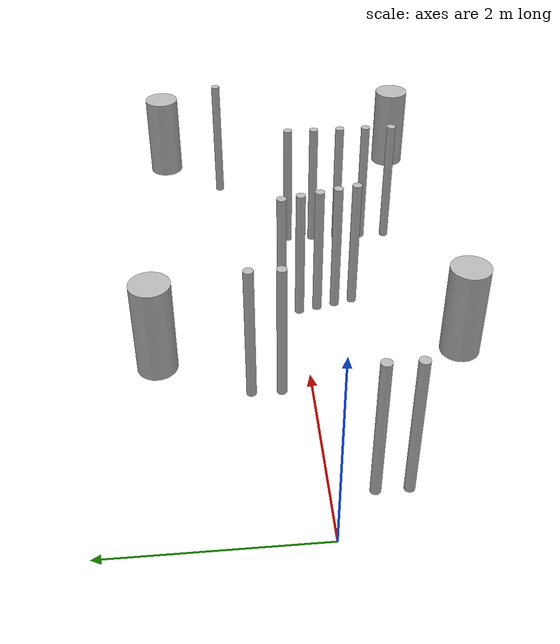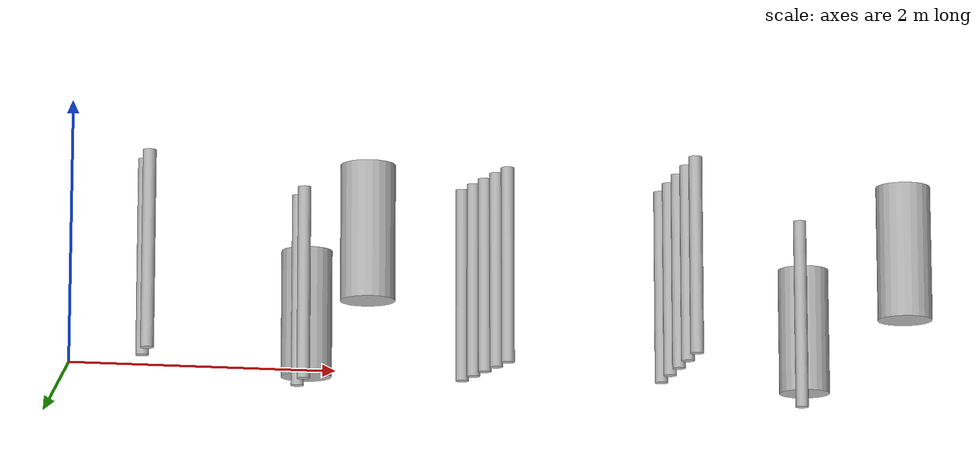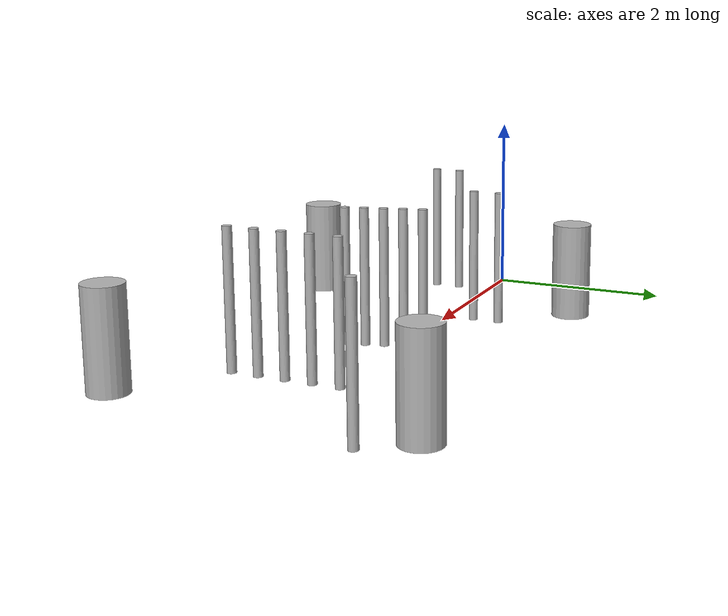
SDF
<?xml version="1.0"?>
<sdf version="1.4">
  <model name="obstacle_course">
    <pose>0 0 0 0 0 0</pose>
    <static>true</static>

    <link name="cyl_left_near_corner">
      <pose>2 -1.5 0.736 0.0 -0.0 0.0</pose>
      <collision name="collision">
        <geometry>
          <cylinder>
            <radius>0.2</radius>
            <length>1.0</length>
          </cylinder>
        </geometry>
      </collision>
      <visual name="visual">
        <geometry>
          <cylinder>
            <radius>0.2</radius>
            <length>1.0</length>
          </cylinder>
        </geometry>
        <material/>
      </visual>
    </link>
    <link name="cyl_right_near_corner">
      <pose>2 1.5 0.736 0.0 -0.0 0.0</pose>
      <collision name="collision">
        <geometry>
          <cylinder>
            <radius>0.2</radius>
            <length>1.0</length>
          </cylinder>
        </geometry>
      </collision>
      <visual name="visual">
        <geometry>
          <cylinder>
            <radius>0.2</radius>
            <length>1.0</length>
          </cylinder>
        </geometry>
        <material/>
      </visual>
    </link>
    <link name="cyl_left_far_corner">
      <pose>6 -1.5 0.736 0.0 -0.0 0.0</pose>
      <collision name="collision">
        <geometry>
          <cylinder>
            <radius>0.2</radius>
            <length>1.0</length>
          </cylinder>
        </geometry>
      </collision>
      <visual name="visual">
        <geometry>
          <cylinder>
            <radius>0.2</radius>
            <length>1.0</length>
          </cylinder>
        </geometry>
        <material/>
      </visual>
    </link>
    <link name="cyl_far_near_corner">
      <pose>6 1.5 0.736 0.0 -0.0 0.0</pose>
      <collision name="collision">
        <geometry>
          <cylinder>
            <radius>0.2</radius>
            <length>1.0</length>
          </cylinder>
        </geometry>
      </collision>
      <visual name="visual">
        <geometry>
          <cylinder>
            <radius>0.2</radius>
            <length>1.0</length>
          </cylinder>
        </geometry>
        <material/>
      </visual>
    </link>

    <link name="cyl_1_01">
      <pose>0.5 -0.7 0.736 0.0 -0.0 0.0</pose>
      <collision name="collision">
        <geometry>
          <cylinder>
            <radius>0.0500</radius>
            <length>1.4800</length>
          </cylinder>
        </geometry>
      </collision>
      <visual name="visual">
        <geometry>
          <cylinder>
            <radius>0.0500</radius>
            <length>1.4800</length>
          </cylinder>
        </geometry>
        <material/>
      </visual>
    </link>
    <link name="cyl_1_02">
      <pose>0.5 -0.4 0.736 0.0 -0.0 0.0</pose>
      <collision name="collision">
        <geometry>
          <cylinder>
            <radius>0.0500</radius>
            <length>1.4800</length>
          </cylinder>
        </geometry>
      </collision>
      <visual name="visual">
        <geometry>
          <cylinder>
            <radius>0.0500</radius>
            <length>1.4800</length>
          </cylinder>
        </geometry>
        <material/>
      </visual>
    </link>
    <link name="cyl_2_01">
      <pose>1.8 0.6 0.736 0.0 -0.0 0.0</pose>
      <collision name="collision">
        <geometry>
          <cylinder>
            <radius>0.0500</radius>
            <length>1.4800</length>
          </cylinder>
        </geometry>
      </collision>
      <visual name="visual">
        <geometry>
          <cylinder>
            <radius>0.0500</radius>
            <length>1.4800</length>
          </cylinder>
        </geometry>
        <material/>
      </visual>
    </link>
    <link name="cyl_2_02">
      <pose>1.8 0.3 0.736 0.0 -0.0 0.0</pose>
      <collision name="collision">
        <geometry>
          <cylinder>
            <radius>0.0500</radius>
            <length>1.4800</length>
          </cylinder>
        </geometry>
      </collision>
      <visual name="visual">
        <geometry>
          <cylinder>
            <radius>0.0500</radius>
            <length>1.4800</length>
          </cylinder>
        </geometry>
        <material/>
      </visual>
    </link>
    <link name="cyl_3_01">
      <pose>3.2 -0.6 0.736 0.0 -0.0 0.0</pose>
      <collision name="collision">
        <geometry>
          <cylinder>
            <radius>0.0500</radius>
            <length>1.4800</length>
          </cylinder>
        </geometry>
      </collision>
      <visual name="visual">
        <geometry>
          <cylinder>
            <radius>0.0500</radius>
            <length>1.4800</length>
          </cylinder>
        </geometry>
        <material/>
      </visual>
    </link>
    <link name="cyl_3_02">
      <pose>3.15 -0.4 0.736 0.0 -0.0 0.0</pose>
      <collision name="collision">
        <geometry>
          <cylinder>
            <radius>0.0500</radius>
            <length>1.4800</length>
          </cylinder>
        </geometry>
      </collision>
      <visual name="visual">
        <geometry>
          <cylinder>
            <radius>0.0500</radius>
            <length>1.4800</length>
          </cylinder>
        </geometry>
        <material/>
      </visual>
    </link>
    <link name="cyl_3_03">
      <pose>3.1 -0.2 0.736 0.0 -0.0 0.0</pose>
      <collision name="collision">
        <geometry>
          <cylinder>
            <radius>0.0500</radius>
            <length>1.4800</length>
          </cylinder>
        </geometry>
      </collision>
      <visual name="visual">
        <geometry>
          <cylinder>
            <radius>0.0500</radius>
            <length>1.4800</length>
          </cylinder>
        </geometry>
        <material/>
      </visual>
    </link>
    <link name="cyl_3_04">
      <pose>3.05 0 0.736 0.0 -0.0 0.0</pose>
      <collision name="collision">
        <geometry>
          <cylinder>
            <radius>0.0500</radius>
            <length>1.4800</length>
          </cylinder>
        </geometry>
      </collision>
      <visual name="visual">
        <geometry>
          <cylinder>
            <radius>0.0500</radius>
            <length>1.4800</length>
          </cylinder>
        </geometry>
        <material/>
      </visual>
    </link>
    <link name="cyl_3_05">
      <pose>3 0.2 0.736 0.0 -0.0 0.0</pose>
      <collision name="collision">
        <geometry>
          <cylinder>
            <radius>0.0500</radius>
            <length>1.4800</length>
          </cylinder>
        </geometry>
      </collision>
      <visual name="visual">
        <geometry>
          <cylinder>
            <radius>0.0500</radius>
            <length>1.4800</length>
          </cylinder>
        </geometry>
        <material/>
      </visual>
    </link>
    <link name="cyl_4_01">
      <pose>4.5 -1.2 0.736 0.0 -0.0 0.0</pose>
      <collision name="collision">
        <geometry>
          <cylinder>
            <radius>0.0500</radius>
            <length>1.4800</length>
          </cylinder>
        </geometry>
      </collision>
      <visual name="visual">
        <geometry>
          <cylinder>
            <radius>0.0500</radius>
            <length>1.4800</length>
          </cylinder>
        </geometry>
        <material/>
      </visual>
    </link>
    <link name="cyl_4_02">
      <pose>4.5 -0.9 0.736 0.0 -0.0 0.0</pose>
      <collision name="collision">
        <geometry>
          <cylinder>
            <radius>0.0500</radius>
            <length>1.4800</length>
          </cylinder>
        </geometry>
      </collision>
      <visual name="visual">
        <geometry>
          <cylinder>
            <radius>0.0500</radius>
            <length>1.4800</length>
          </cylinder>
        </geometry>
        <material/>
      </visual>
    </link>
    <link name="cyl_4_03">
      <pose>4.5 -0.6 0.736 0.0 -0.0 0.0</pose>
      <collision name="collision">
        <geometry>
          <cylinder>
            <radius>0.0500</radius>
            <length>1.4800</length>
          </cylinder>
        </geometry>
      </collision>
      <visual name="visual">
        <geometry>
          <cylinder>
            <radius>0.0500</radius>
            <length>1.4800</length>
          </cylinder>
        </geometry>
        <material/>
      </visual>
    </link>
    <link name="cyl_4_04">
      <pose>4.5 -0.3 0.736 0.0 -0.0 0.0</pose>
      <collision name="collision">
        <geometry>
          <cylinder>
            <radius>0.0500</radius>
            <length>1.4800</length>
          </cylinder>
        </geometry>
      </collision>
      <visual name="visual">
        <geometry>
          <cylinder>
            <radius>0.0500</radius>
            <length>1.4800</length>
          </cylinder>
        </geometry>
        <material/>
      </visual>
    </link>
    <link name="cyl_4_05">
      <pose>4.5 0.0 0.736 0.0 -0.0 0.0</pose>
      <collision name="collision">
        <geometry>
          <cylinder>
            <radius>0.0500</radius>
            <length>1.4800</length>
          </cylinder>
        </geometry>
      </collision>
      <visual name="visual">
        <geometry>
          <cylinder>
            <radius>0.0500</radius>
            <length>1.4800</length>
          </cylinder>
        </geometry>
        <material/>
      </visual>
    </link>
    <link name="cyl_5_01">
      <pose>5.8 0.8 0.736 0.0 -0.0 0.0</pose>
      <collision name="collision">
        <geometry>
          <cylinder>
            <radius>0.0500</radius>
            <length>1.4800</length>
          </cylinder>
        </geometry>
      </collision>
      <visual name="visual">
        <geometry>
          <cylinder>
            <radius>0.0500</radius>
            <length>1.4800</length>
          </cylinder>
        </geometry>
        <material/>
      </visual>
    </link>
  </model>
</sdf>
